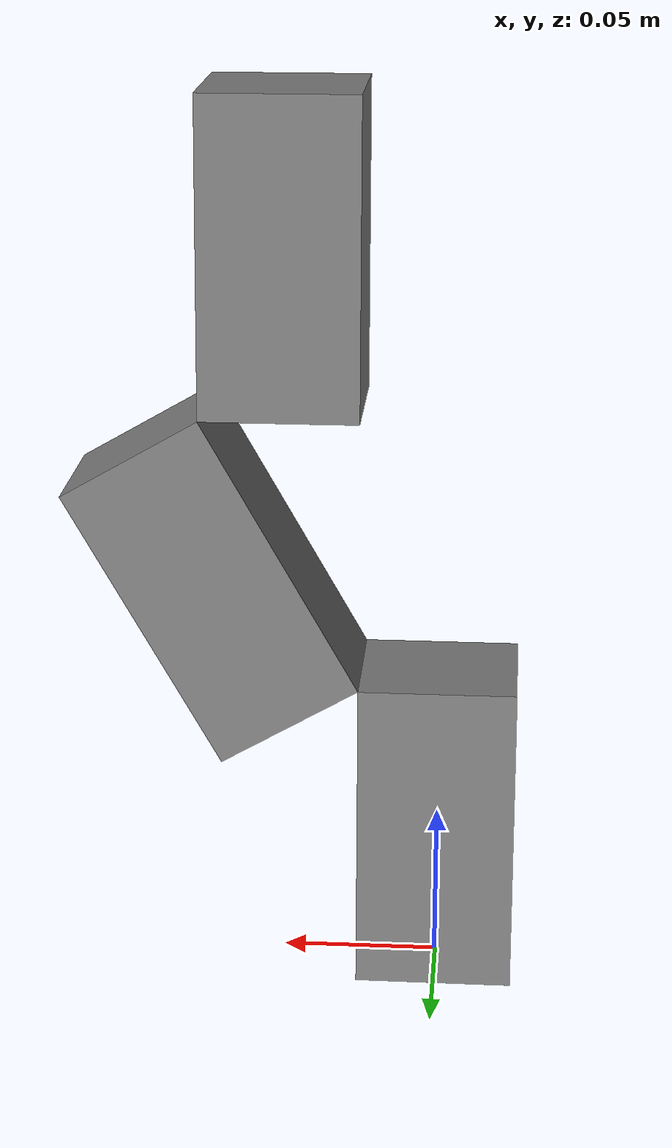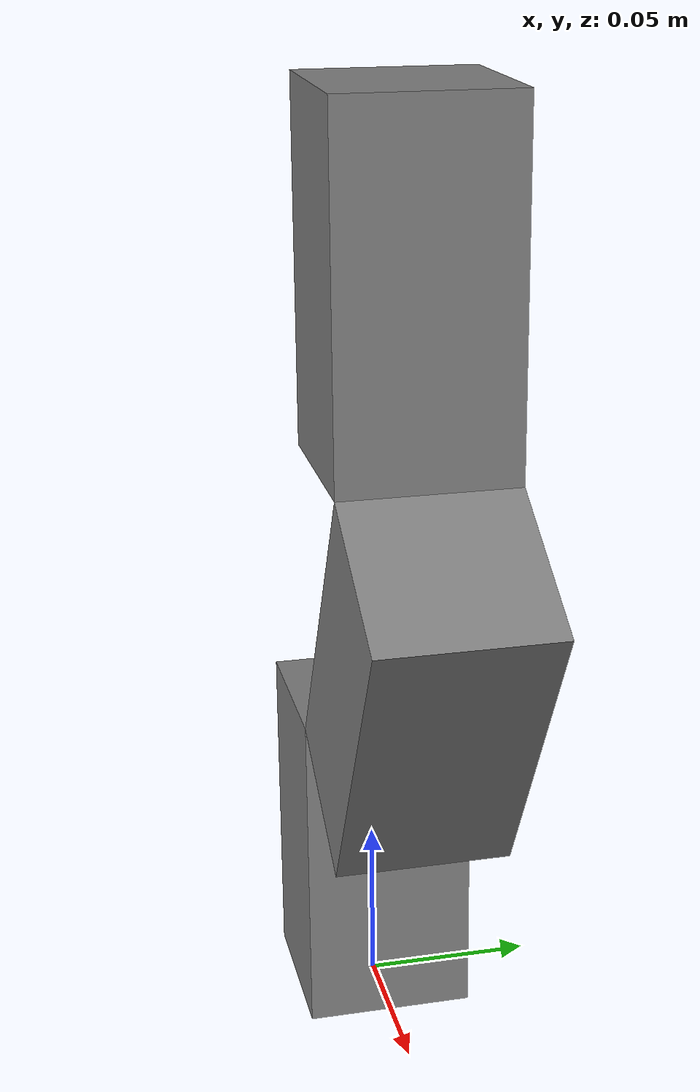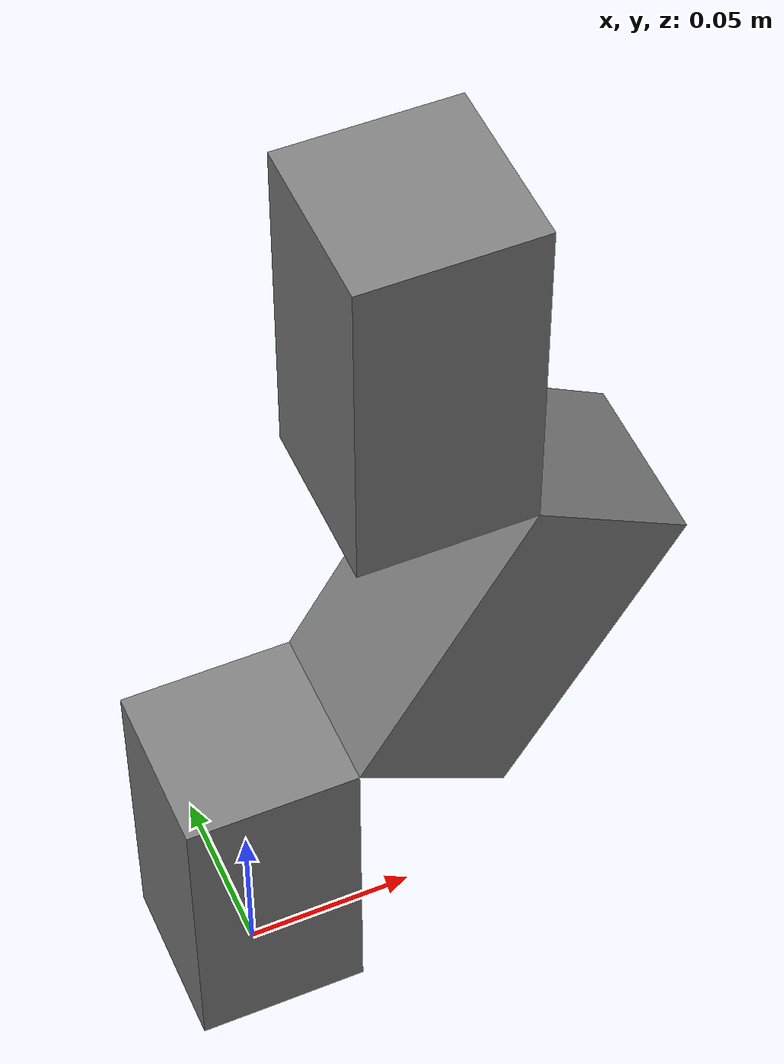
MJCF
<mujoco model="test_blocks_assy">
  <compiler angle="radian" meshdir="meshes/"/>

  <asset>
    <mesh name="base_link" file="base_link.stl" scale="0.001 0.001 0.001"/>
    <mesh name="box_11" file="box_11.stl" scale="0.001 0.001 0.001"/>
    <mesh name="box_21" file="box_21.stl" scale="0.001 0.001 0.001"/>
  </asset>

  <worldbody>
    <body name="base_link">
      <inertial pos="0 0 0.05" mass="1.9625" diaginertia="0.00204427 0.00204427 0.000817708"/>
      <geom type="mesh" mesh="base_link"/>
      <body name="box_11" pos="0.025 0 0.1">
        <inertial pos="0.0466506 0 0.0308013" quat="0.965926 0 0.258819 0" mass="1.9625" diaginertia="0.00204427 0.00204427 0.000817708"/>
        <geom pos="-0.025 0 -0.1" type="mesh" mesh="box_11"/>
        <body name="box_21" pos="0.05 0 0.086603">
          <inertial pos="-0.025 0 0.0499995" mass="1.9625" diaginertia="0.00204427 0.00204427 0.000817708"/>
          <geom pos="-0.075 0 -0.186603" quat="1 0 0 0" type="mesh" mesh="box_21"/>
        </body>
      </body>
    </body>
  </worldbody>
</mujoco>
